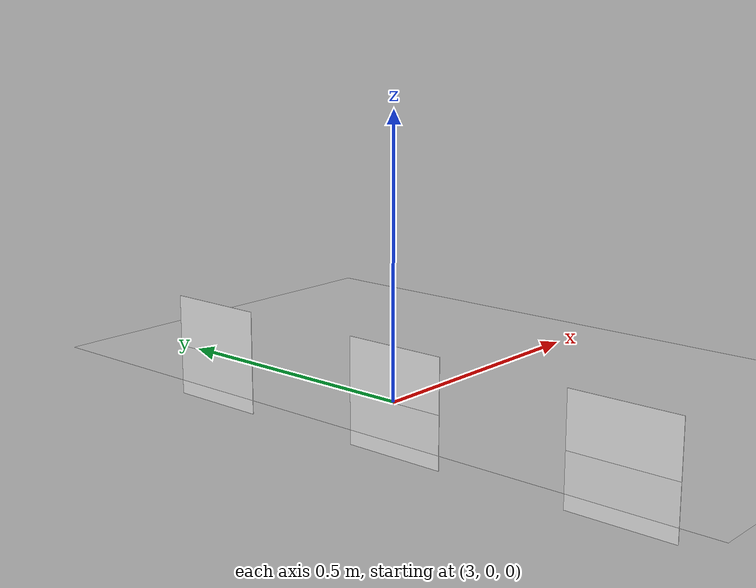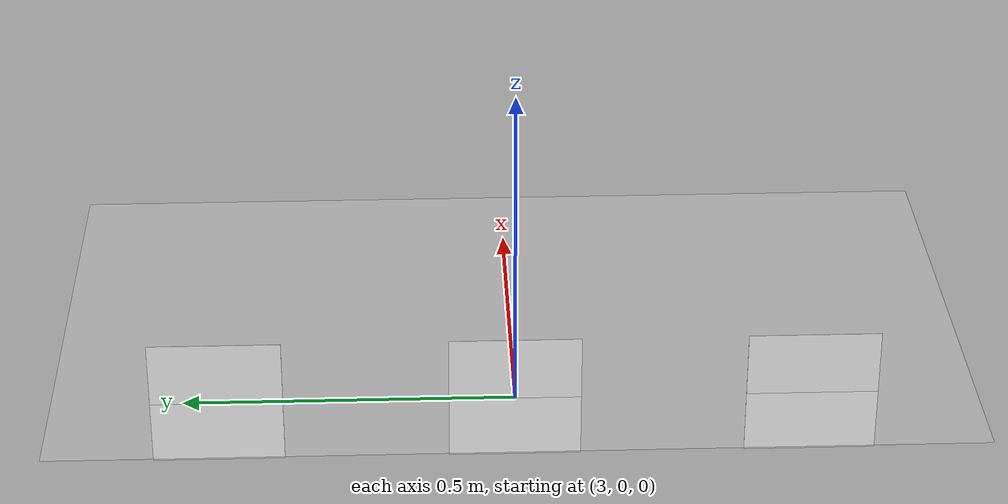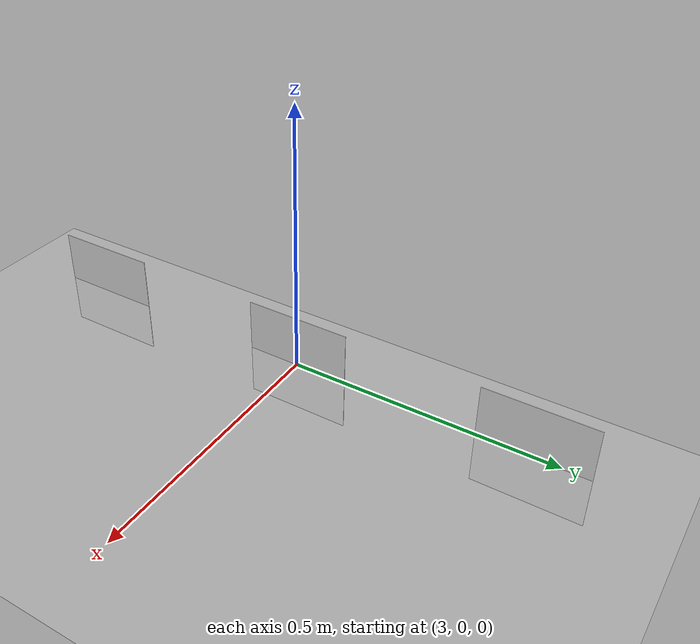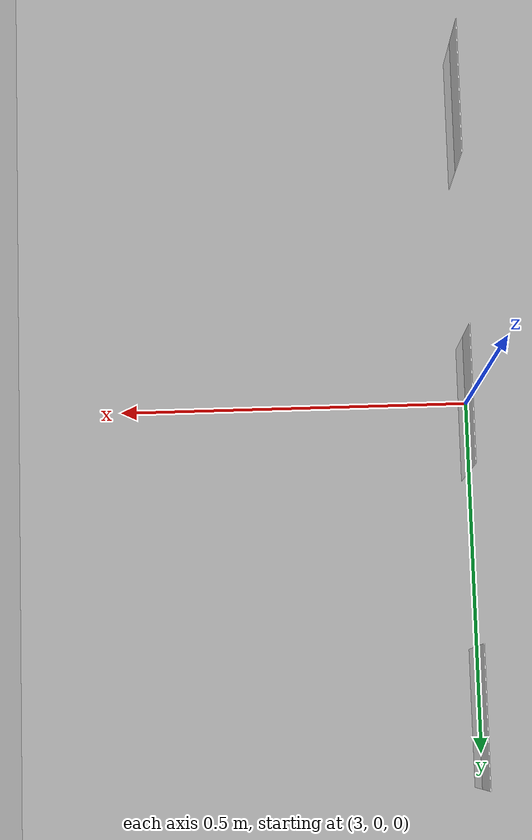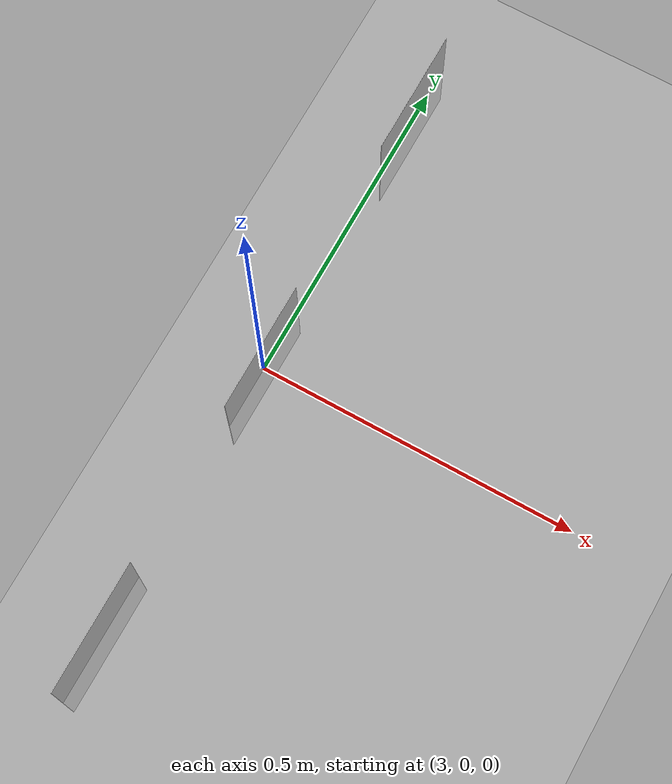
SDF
<?xml version="1.0" ?>
<sdf version="1.5">
  <world name="default">
    <include>
      <uri>model://sun</uri>
    </include>
    <include>
      <uri>model://ground_plane</uri>
    </include>

    <!-- AprilTag dock, 3 m in front of the robot spawn point (0,0), facing the robot (-x direction).
         Tag centre height = 0.17 m (the robot's camera is at ~0.20 m). -->
    <include>
      <name>apriltag_dock</name>
      <uri>model://apriltag_dock</uri>
      <pose>3.0 0 0 0 0 0</pose>
    </include>
  </world>
</sdf>

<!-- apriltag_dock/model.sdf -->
<sdf version="1.9">
  <model name="apriltag_dock">
    <static>true</static>
    <link name="link">
      <visual name="visual_tag0">
        <pose>0 -0.45 0 0 0 0</pose>
        <cast_shadows>false</cast_shadows>
        <geometry>
          <box>
            <size>0.001 0.20 0.20</size>
          </box>
        </geometry>
        <material>
          <ambient>1 1 1 1</ambient>
          <diffuse>1 1 1 1</diffuse>
          <specular>0 0 0 0</specular>
          <pbr>
            <metal>
              <albedo_map>model://apriltag_dock/materials/textures/apriltag_36h11_id0.png</albedo_map>
              <metalness>0.0</metalness>
              <roughness>1.0</roughness>
            </metal>
          </pbr>
        </material>
      </visual>
      <visual name="visual_tag1">
        <pose>0 0 0 0 0 0</pose>
        <cast_shadows>false</cast_shadows>
        <geometry>
          <box>
            <size>0.001 0.20 0.20</size>
          </box>
        </geometry>
        <material>
          <ambient>1 1 1 1</ambient>
          <diffuse>1 1 1 1</diffuse>
          <specular>0 0 0 0</specular>
          <pbr>
            <metal>
              <albedo_map>model://apriltag_dock/materials/textures/apriltag_36h11_id1.png</albedo_map>
              <metalness>0.0</metalness>
              <roughness>1.0</roughness>
            </metal>
          </pbr>
        </material>
      </visual>
      <visual name="visual_tag2">
        <pose>0 0.45 0 0 0 0</pose>
        <cast_shadows>false</cast_shadows>
        <geometry>
          <box>
            <size>0.001 0.20 0.20</size>
          </box>
        </geometry>
        <material>
          <ambient>1 1 1 1</ambient>
          <diffuse>1 1 1 1</diffuse>
          <specular>0 0 0 0</specular>
          <pbr>
            <metal>
              <albedo_map>model://apriltag_dock/materials/textures/apriltag_36h11_id2.png</albedo_map>
              <metalness>0.0</metalness>
              <roughness>1.0</roughness>
            </metal>
          </pbr>
        </material>
      </visual>
      <collision name="collision">
        <geometry>
          <box>
            <size>0.001 1.10 0.20</size>
          </box>
        </geometry>
      </collision>
    </link>
  </model>
</sdf>
